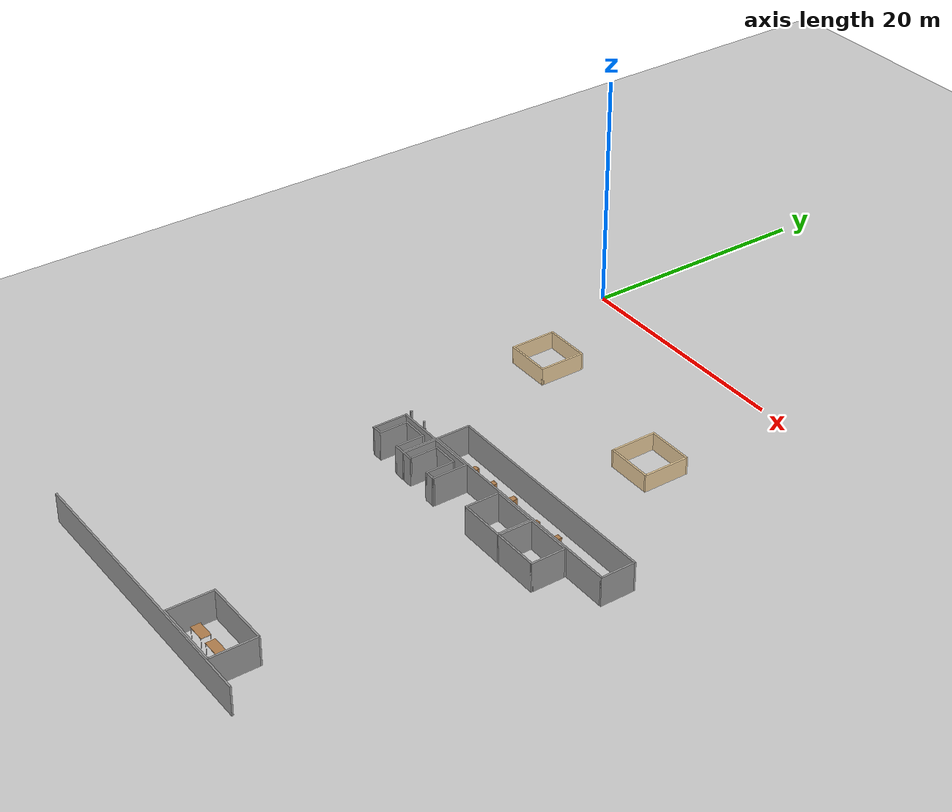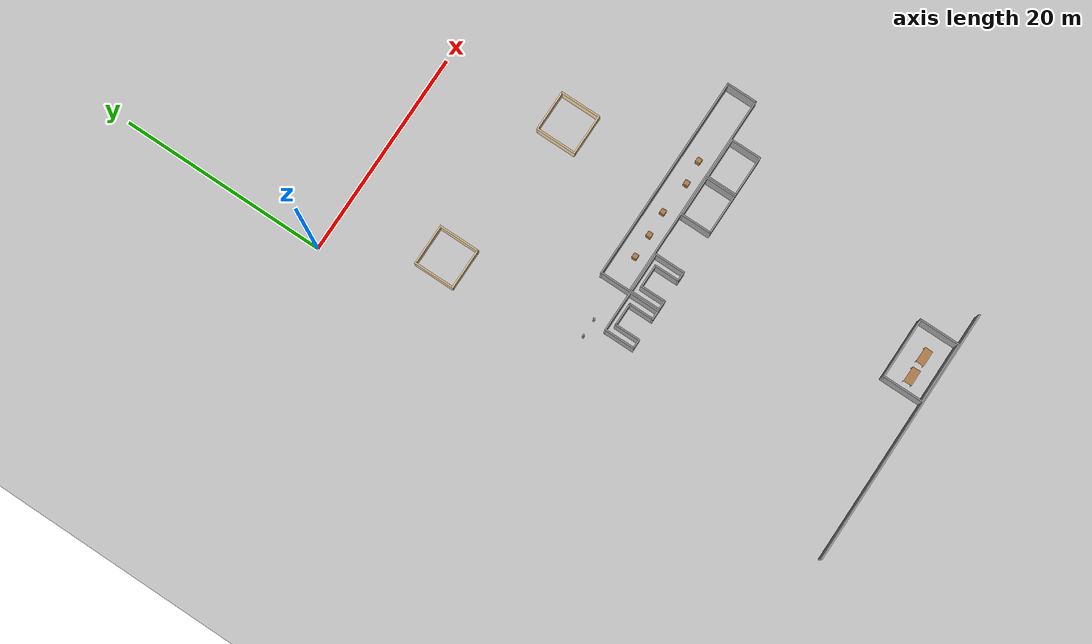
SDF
<sdf version="1.6">
 <world name="default">
  <model name="ground_plane">
   <static>1</static>
   <link name="link">
    <collision name="collision">
     <geometry><plane><normal>0 0 1</normal><size>105 105</size></plane></geometry>
     <surface>
      <contact><collide_bitmask>65535</collide_bitmask></contact>
      <friction><ode><mu>100</mu><mu2>50</mu2></ode></friction>
     </surface>
    </collision>
    <visual name="visual">
     <cast_shadows>0</cast_shadows>
     <geometry><plane><normal>0 0 1</normal><size>105 105</size></plane></geometry>
     <material>
      <script><uri>file://media/materials/scripts/gazebo.material</uri><name>Gazebo/Grey</name></script>
     </material>
    </visual>
   </link>
  </model>
  <model name="base3x20_3">
   <pose>21.5045 -23.229 0 0 -0 0</pose>
   <link name="Wall_16">
    <collision name="Wall_16_Collision">
     <geometry><box><size>3 0.15 2.5</size></box></geometry>
     <pose>0 0 1.25 0 -0 0</pose>
    </collision>
    <visual name="Wall_16_Visual">
     <pose>0 0 1.25 0 -0 0</pose>
     <geometry><box><size>3 0.15 2.5</size></box></geometry>
     <material>
      <script><uri>file://media/materials/scripts/gazebo.material</uri><name>Gazebo/Grey</name></script>
      <ambient>1 1 1 1</ambient>
     </material>
     <meta><layer>0</layer></meta>
    </visual>
    <pose>-9.925 -0 0 0 -0 -1.5708</pose>
   </link>
   <link name="Wall_17">
    <collision name="Wall_17_Collision">
     <geometry><box><size>20 0.15 2.5</size></box></geometry>
     <pose>0 0 1.25 0 -0 0</pose>
    </collision>
    <visual name="Wall_17_Visual">
     <pose>0 0 1.25 0 -0 0</pose>
     <geometry><box><size>20 0.15 2.5</size></box></geometry>
     <material>
      <script><uri>file://media/materials/scripts/gazebo.material</uri><name>Gazebo/Grey</name></script>
      <ambient>1 1 1 1</ambient>
     </material>
     <meta><layer>0</layer></meta>
    </visual>
    <pose>-0 -1.425 0 0 -0 0</pose>
   </link>
   <link name="Wall_18">
    <collision name="Wall_18_Collision">
     <geometry><box><size>3 0.15 2.5</size></box></geometry>
     <pose>0 0 1.25 0 -0 0</pose>
    </collision>
    <visual name="Wall_18_Visual">
     <pose>0 0 1.25 0 -0 0</pose>
     <geometry><box><size>3 0.15 2.5</size></box></geometry>
     <material>
      <script><uri>file://media/materials/scripts/gazebo.material</uri><name>Gazebo/Grey</name></script>
      <ambient>1 1 1 1</ambient>
     </material>
     <meta><layer>0</layer></meta>
    </visual>
    <pose>9.925 -0 0 0 -0 1.5708</pose>
   </link>
   <link name="Wall_19">
    <collision name="Wall_19_Collision">
     <geometry><box><size>20 0.15 2.5</size></box></geometry>
     <pose>0 0 1.25 0 -0 0</pose>
    </collision>
    <visual name="Wall_19_Visual">
     <pose>0 0 1.25 0 -0 0</pose>
     <geometry><box><size>20 0.15 2.5</size></box></geometry>
     <material>
      <script><uri>file://media/materials/scripts/gazebo.material</uri><name>Gazebo/Grey</name></script>
      <ambient>1 1 1 1</ambient>
     </material>
     <meta><layer>0</layer></meta>
    </visual>
    <pose>-0 1.425 0 0 -0 3.14159</pose>
   </link>
   <static>1</static>
  </model>
  <model name="base4x6_0">
   <pose>20.4097 -48.6671 0 0 -0 0</pose>
   <link name="Wall_23">
    <collision name="Wall_23_Collision">
     <geometry><box><size>4 0.15 2.5</size></box></geometry>
     <pose>0 0 1.25 0 -0 0</pose>
    </collision>
    <visual name="Wall_23_Visual">
     <pose>0 0 1.25 0 -0 0</pose>
     <geometry><box><size>4 0.15 2.5</size></box></geometry>
     <material>
      <script><uri>file://media/materials/scripts/gazebo.material</uri><name>Gazebo/Grey</name></script>
      <ambient>1 1 1 1</ambient>
     </material>
     <meta><layer>0</layer></meta>
    </visual>
    <pose>-2.925 0 0 0 -0 -1.5708</pose>
   </link>
   <link name="Wall_24">
    <collision name="Wall_24_Collision">
     <geometry><box><size>6 0.15 2.5</size></box></geometry>
     <pose>0 0 1.25 0 -0 0</pose>
    </collision>
    <visual name="Wall_24_Visual">
     <pose>0 0 1.25 0 -0 0</pose>
     <geometry><box><size>6 0.15 2.5</size></box></geometry>
     <material>
      <script><uri>file://media/materials/scripts/gazebo.material</uri><name>Gazebo/Grey</name></script>
      <ambient>1 1 1 1</ambient>
     </material>
     <meta><layer>0</layer></meta>
    </visual>
    <pose>-0 -1.925 0 0 -0 0</pose>
   </link>
   <link name="Wall_25">
    <collision name="Wall_25_Collision">
     <geometry><box><size>4 0.15 2.5</size></box></geometry>
     <pose>0 0 1.25 0 -0 0</pose>
    </collision>
    <visual name="Wall_25_Visual">
     <pose>0 0 1.25 0 -0 0</pose>
     <geometry><box><size>4 0.15 2.5</size></box></geometry>
     <material>
      <script><uri>file://media/materials/scripts/gazebo.material</uri><name>Gazebo/Grey</name></script>
      <ambient>1 1 1 1</ambient>
     </material>
     <meta><layer>0</layer></meta>
    </visual>
    <pose>2.925 0 0 0 -0 1.5708</pose>
   </link>
   <link name="Wall_26">
    <collision name="Wall_26_Collision">
     <geometry><box><size>6 0.15 2.5</size></box></geometry>
     <pose>0 0 1.25 0 -0 0</pose>
    </collision>
    <visual name="Wall_26_Visual">
     <pose>0 0 1.25 0 -0 0</pose>
     <geometry><box><size>6 0.15 2.5</size></box></geometry>
     <material>
      <script><uri>file://media/materials/scripts/gazebo.material</uri><name>Gazebo/Grey</name></script>
      <ambient>1 1 1 1</ambient>
     </material>
     <meta><layer>0</layer></meta>
    </visual>
    <pose>-0 1.925 0 0 -0 3.14159</pose>
   </link>
   <static>1</static>
  </model>
  <model name="wall_25m_8">
   <pose>14.0268 -50.7126 0 0 -0 0</pose>
   <link name="Wall_28">
    <collision name="Wall_28_Collision">
     <geometry><box><size>25 0.15 2.5</size></box></geometry>
     <pose>0 0 1.25 0 -0 0</pose>
    </collision>
    <visual name="Wall_28_Visual">
     <pose>0 0 1.25 0 -0 0</pose>
     <geometry><box><size>25 0.15 2.5</size></box></geometry>
     <material>
      <script><uri>file://media/materials/scripts/gazebo.material</uri><name>Gazebo/Grey</name></script>
      <ambient>1 1 1 1</ambient>
     </material>
     <meta><layer>0</layer></meta>
    </visual>
   </link>
   <static>1</static>
  </model>
  <model name="table_12">
   <static>1</static>
   <link name="link">
    <collision name="surface">
     <pose>0 0 1 0 -0 0</pose>
     <geometry><box><size>1.5 0.8 0.03</size></box></geometry>
     <surface><friction><ode><mu>0.6</mu><mu2>0.6</mu2></ode></friction></surface>
    </collision>
    <visual name="visual1">
     <pose>0 0 1 0 -0 0</pose>
     <geometry><box><size>1.5 0.8 0.03</size></box></geometry>
     <material>
      <script><uri>file://media/materials/scripts/gazebo.material</uri><name>Gazebo/Wood</name></script>
     </material>
    </visual>
    <collision name="front_left_leg">
     <pose>0.68 0.38 0.5 0 -0 0</pose>
     <geometry><cylinder><radius>0.02</radius><length>1</length></cylinder></geometry>
    </collision>
    <visual name="front_left_leg">
     <pose>0.68 0.38 0.5 0 -0 0</pose>
     <geometry><cylinder><radius>0.02</radius><length>1</length></cylinder></geometry>
     <material>
      <script><uri>file://media/materials/scripts/gazebo.material</uri><name>Gazebo/Grey</name></script>
     </material>
    </visual>
    <collision name="front_right_leg">
     <pose>0.68 -0.38 0.5 0 -0 0</pose>
     <geometry><cylinder><radius>0.02</radius><length>1</length></cylinder></geometry>
    </collision>
    <visual name="front_right_leg">
     <pose>0.68 -0.38 0.5 0 -0 0</pose>
     <geometry><cylinder><radius>0.02</radius><length>1</length></cylinder></geometry>
     <material>
      <script><uri>file://media/materials/scripts/gazebo.material</uri><name>Gazebo/Grey</name></script>
     </material>
    </visual>
    <collision name="back_right_leg">
     <pose>-0.68 -0.38 0.5 0 -0 0</pose>
     <geometry><cylinder><radius>0.02</radius><length>1</length></cylinder></geometry>
    </collision>
    <visual name="back_right_leg">
     <pose>-0.68 -0.38 0.5 0 -0 0</pose>
     <geometry><cylinder><radius>0.02</radius><length>1</length></cylinder></geometry>
     <material>
      <script><uri>file://media/materials/scripts/gazebo.material</uri><name>Gazebo/Grey</name></script>
     </material>
    </visual>
    <collision name="back_left_leg">
     <pose>-0.68 0.38 0.5 0 -0 0</pose>
     <geometry><cylinder><radius>0.02</radius><length>1</length></cylinder></geometry>
    </collision>
    <visual name="back_left_leg">
     <pose>-0.68 0.38 0.5 0 -0 0</pose>
     <geometry><cylinder><radius>0.02</radius><length>1</length></cylinder></geometry>
     <material>
      <script><uri>file://media/materials/scripts/gazebo.material</uri><name>Gazebo/Grey</name></script>
     </material>
    </visual>
   </link>
   <pose>19.0783 -48.8312 0 0 -0 0</pose>
  </model>
  <model name="table_13">
   <static>1</static>
   <link name="link">
    <collision name="surface">
     <pose>0 0 1 0 -0 0</pose>
     <geometry><box><size>1.5 0.8 0.03</size></box></geometry>
     <surface><friction><ode><mu>0.6</mu><mu2>0.6</mu2></ode></friction></surface>
    </collision>
    <visual name="visual1">
     <pose>0 0 1 0 -0 0</pose>
     <geometry><box><size>1.5 0.8 0.03</size></box></geometry>
     <material>
      <script><uri>file://media/materials/scripts/gazebo.material</uri><name>Gazebo/Wood</name></script>
     </material>
    </visual>
    <collision name="front_left_leg">
     <pose>0.68 0.38 0.5 0 -0 0</pose>
     <geometry><cylinder><radius>0.02</radius><length>1</length></cylinder></geometry>
    </collision>
    <visual name="front_left_leg">
     <pose>0.68 0.38 0.5 0 -0 0</pose>
     <geometry><cylinder><radius>0.02</radius><length>1</length></cylinder></geometry>
     <material>
      <script><uri>file://media/materials/scripts/gazebo.material</uri><name>Gazebo/Grey</name></script>
     </material>
    </visual>
    <collision name="front_right_leg">
     <pose>0.68 -0.38 0.5 0 -0 0</pose>
     <geometry><cylinder><radius>0.02</radius><length>1</length></cylinder></geometry>
    </collision>
    <visual name="front_right_leg">
     <pose>0.68 -0.38 0.5 0 -0 0</pose>
     <geometry><cylinder><radius>0.02</radius><length>1</length></cylinder></geometry>
     <material>
      <script><uri>file://media/materials/scripts/gazebo.material</uri><name>Gazebo/Grey</name></script>
     </material>
    </visual>
    <collision name="back_right_leg">
     <pose>-0.68 -0.38 0.5 0 -0 0</pose>
     <geometry><cylinder><radius>0.02</radius><length>1</length></cylinder></geometry>
    </collision>
    <visual name="back_right_leg">
     <pose>-0.68 -0.38 0.5 0 -0 0</pose>
     <geometry><cylinder><radius>0.02</radius><length>1</length></cylinder></geometry>
     <material>
      <script><uri>file://media/materials/scripts/gazebo.material</uri><name>Gazebo/Grey</name></script>
     </material>
    </visual>
    <collision name="back_left_leg">
     <pose>-0.68 0.38 0.5 0 -0 0</pose>
     <geometry><cylinder><radius>0.02</radius><length>1</length></cylinder></geometry>
    </collision>
    <visual name="back_left_leg">
     <pose>-0.68 0.38 0.5 0 -0 0</pose>
     <geometry><cylinder><radius>0.02</radius><length>1</length></cylinder></geometry>
     <material>
      <script><uri>file://media/materials/scripts/gazebo.material</uri><name>Gazebo/Grey</name></script>
     </material>
    </visual>
   </link>
   <pose>21.0761 -48.8079 0 0 -0 0</pose>
  </model>
  <model name="cabinet">
   <static>1</static>
   <link name="cabinet_bottom_plate">
    <inertial>
     <pose>0 0 -1 0 -0 0</pose>
     <inertia><ixx>2.05</ixx><ixy>0</ixy><ixz>0</ixz><iyy>2.05</iyy><iyz>0</iyz><izz>2.05</izz></inertia>
     <mass>25</mass>
    </inertial>
    <collision name="cabinet_bottom_plate_geom">
     <pose>0 0 0.01 0 -0 0</pose>
     <geometry><box><size>0.45 0.45 0.02</size></box></geometry>
    </collision>
    <visual name="cabinet_bottom_plate_geom_visual">
     <pose>0 0 0.01 0 -0 0</pose>
     <geometry><box><size>0.45 0.45 0.02</size></box></geometry>
     <material>
      <script><uri>file://media/materials/scripts/gazebo.material</uri><name>Gazebo/Wood</name></script>
     </material>
    </visual>
    <collision name="cabinet_bottom_plate_geom_cabinet_back_plate">
     <pose>0.235 0 0.51 0 -0 0</pose>
     <geometry><box><size>0.02 0.45 1.02</size></box></geometry>
    </collision>
    <visual name="cabinet_bottom_plate_geom_cabinet_back_plate_visual">
     <pose>0.235 0 0.51 0 -0 0</pose>
     <geometry><box><size>0.02 0.45 1.02</size></box></geometry>
     <material>
      <script><uri>file://media/materials/scripts/gazebo.material</uri><name>Gazebo/Wood</name></script>
     </material>
    </visual>
    <collision name="cabinet_bottom_plate_geom_cabinet_left_plate">
     <pose>0 0.235 0.51 0 -0 0</pose>
     <geometry><box><size>0.45 0.02 1.02</size></box></geometry>
    </collision>
    <visual name="cabinet_bottom_plate_geom_cabinet_left_plate_visual">
     <pose>0 0.235 0.51 0 -0 0</pose>
     <geometry><box><size>0.45 0.02 1.02</size></box></geometry>
     <material>
      <script><uri>file://media/materials/scripts/gazebo.material</uri><name>Gazebo/Wood</name></script>
     </material>
    </visual>
    <collision name="cabinet_bottom_plate_geom_cabinet_middle_plate">
     <pose>0 0 0.51 0 -0 0</pose>
     <geometry><box><size>0.45 0.45 0.02</size></box></geometry>
    </collision>
    <visual name="cabinet_bottom_plate_geom_cabinet_middle_plate_visual">
     <pose>0 0 0.51 0 -0 0</pose>
     <geometry><box><size>0.45 0.45 0.02</size></box></geometry>
     <material>
      <script><uri>file://media/materials/scripts/gazebo.material</uri><name>Gazebo/Wood</name></script>
     </material>
    </visual>
    <collision name="cabinet_bottom_plate_geom_cabinet_right_plate">
     <pose>0 -0.235 0.51 0 -0 0</pose>
     <geometry><box><size>0.45 0.02 1.02</size></box></geometry>
    </collision>
    <visual name="cabinet_bottom_plate_geom_cabinet_right_plate_visual">
     <pose>0 -0.235 0.51 0 -0 0</pose>
     <geometry><box><size>0.45 0.02 1.02</size></box></geometry>
     <material>
      <script><uri>file://media/materials/scripts/gazebo.material</uri><name>Gazebo/Wood</name></script>
     </material>
    </visual>
    <collision name="cabinet_bottom_plate_geom_cabinet_top_plate">
     <pose>0 0 1.01 0 -0 0</pose>
     <geometry><box><size>0.45 0.45 0.02</size></box></geometry>
    </collision>
    <visual name="cabinet_bottom_plate_geom_cabinet_top_plate_visual">
     <pose>0 0 1.01 0 -0 0</pose>
     <geometry><box><size>0.45 0.45 0.02</size></box></geometry>
     <material>
      <script><uri>file://media/materials/scripts/gazebo.material</uri><name>Gazebo/Wood</name></script>
     </material>
    </visual>
   </link>
   <pose>14.6067 -23.3531 0 0 -0 0</pose>
  </model>
  <model name="cabinet_0">
   <static>1</static>
   <link name="cabinet_bottom_plate">
    <inertial>
     <pose>0 0 -1 0 -0 0</pose>
     <inertia><ixx>2.05</ixx><ixy>0</ixy><ixz>0</ixz><iyy>2.05</iyy><iyz>0</iyz><izz>2.05</izz></inertia>
     <mass>25</mass>
    </inertial>
    <collision name="cabinet_bottom_plate_geom">
     <pose>0 0 0.01 0 -0 0</pose>
     <geometry><box><size>0.45 0.45 0.02</size></box></geometry>
    </collision>
    <visual name="cabinet_bottom_plate_geom_visual">
     <pose>0 0 0.01 0 -0 0</pose>
     <geometry><box><size>0.45 0.45 0.02</size></box></geometry>
     <material>
      <script><uri>file://media/materials/scripts/gazebo.material</uri><name>Gazebo/Wood</name></script>
     </material>
    </visual>
    <collision name="cabinet_bottom_plate_geom_cabinet_back_plate">
     <pose>0.235 0 0.51 0 -0 0</pose>
     <geometry><box><size>0.02 0.45 1.02</size></box></geometry>
    </collision>
    <visual name="cabinet_bottom_plate_geom_cabinet_back_plate_visual">
     <pose>0.235 0 0.51 0 -0 0</pose>
     <geometry><box><size>0.02 0.45 1.02</size></box></geometry>
     <material>
      <script><uri>file://media/materials/scripts/gazebo.material</uri><name>Gazebo/Wood</name></script>
     </material>
    </visual>
    <collision name="cabinet_bottom_plate_geom_cabinet_left_plate">
     <pose>0 0.235 0.51 0 -0 0</pose>
     <geometry><box><size>0.45 0.02 1.02</size></box></geometry>
    </collision>
    <visual name="cabinet_bottom_plate_geom_cabinet_left_plate_visual">
     <pose>0 0.235 0.51 0 -0 0</pose>
     <geometry><box><size>0.45 0.02 1.02</size></box></geometry>
     <material>
      <script><uri>file://media/materials/scripts/gazebo.material</uri><name>Gazebo/Wood</name></script>
     </material>
    </visual>
    <collision name="cabinet_bottom_plate_geom_cabinet_middle_plate">
     <pose>0 0 0.51 0 -0 0</pose>
     <geometry><box><size>0.45 0.45 0.02</size></box></geometry>
    </collision>
    <visual name="cabinet_bottom_plate_geom_cabinet_middle_plate_visual">
     <pose>0 0 0.51 0 -0 0</pose>
     <geometry><box><size>0.45 0.45 0.02</size></box></geometry>
     <material>
      <script><uri>file://media/materials/scripts/gazebo.material</uri><name>Gazebo/Wood</name></script>
     </material>
    </visual>
    <collision name="cabinet_bottom_plate_geom_cabinet_right_plate">
     <pose>0 -0.235 0.51 0 -0 0</pose>
     <geometry><box><size>0.45 0.02 1.02</size></box></geometry>
    </collision>
    <visual name="cabinet_bottom_plate_geom_cabinet_right_plate_visual">
     <pose>0 -0.235 0.51 0 -0 0</pose>
     <geometry><box><size>0.45 0.02 1.02</size></box></geometry>
     <material>
      <script><uri>file://media/materials/scripts/gazebo.material</uri><name>Gazebo/Wood</name></script>
     </material>
    </visual>
    <collision name="cabinet_bottom_plate_geom_cabinet_top_plate">
     <pose>0 0 1.01 0 -0 0</pose>
     <geometry><box><size>0.45 0.45 0.02</size></box></geometry>
    </collision>
    <visual name="cabinet_bottom_plate_geom_cabinet_top_plate_visual">
     <pose>0 0 1.01 0 -0 0</pose>
     <geometry><box><size>0.45 0.45 0.02</size></box></geometry>
     <material>
      <script><uri>file://media/materials/scripts/gazebo.material</uri><name>Gazebo/Wood</name></script>
     </material>
    </visual>
   </link>
   <pose>16.8557 -23.3254 0 0 -0 0</pose>
  </model>
  <model name="cabinet_1">
   <static>1</static>
   <link name="cabinet_bottom_plate">
    <inertial>
     <pose>0 0 -1 0 -0 0</pose>
     <inertia><ixx>2.05</ixx><ixy>0</ixy><ixz>0</ixz><iyy>2.05</iyy><iyz>0</iyz><izz>2.05</izz></inertia>
     <mass>25</mass>
    </inertial>
    <collision name="cabinet_bottom_plate_geom">
     <pose>0 0 0.01 0 -0 0</pose>
     <geometry><box><size>0.45 0.45 0.02</size></box></geometry>
    </collision>
    <visual name="cabinet_bottom_plate_geom_visual">
     <pose>0 0 0.01 0 -0 0</pose>
     <geometry><box><size>0.45 0.45 0.02</size></box></geometry>
     <material>
      <script><uri>file://media/materials/scripts/gazebo.material</uri><name>Gazebo/Wood</name></script>
     </material>
    </visual>
    <collision name="cabinet_bottom_plate_geom_cabinet_back_plate">
     <pose>0.235 0 0.51 0 -0 0</pose>
     <geometry><box><size>0.02 0.45 1.02</size></box></geometry>
    </collision>
    <visual name="cabinet_bottom_plate_geom_cabinet_back_plate_visual">
     <pose>0.235 0 0.51 0 -0 0</pose>
     <geometry><box><size>0.02 0.45 1.02</size></box></geometry>
     <material>
      <script><uri>file://media/materials/scripts/gazebo.material</uri><name>Gazebo/Wood</name></script>
     </material>
    </visual>
    <collision name="cabinet_bottom_plate_geom_cabinet_left_plate">
     <pose>0 0.235 0.51 0 -0 0</pose>
     <geometry><box><size>0.45 0.02 1.02</size></box></geometry>
    </collision>
    <visual name="cabinet_bottom_plate_geom_cabinet_left_plate_visual">
     <pose>0 0.235 0.51 0 -0 0</pose>
     <geometry><box><size>0.45 0.02 1.02</size></box></geometry>
     <material>
      <script><uri>file://media/materials/scripts/gazebo.material</uri><name>Gazebo/Wood</name></script>
     </material>
    </visual>
    <collision name="cabinet_bottom_plate_geom_cabinet_middle_plate">
     <pose>0 0 0.51 0 -0 0</pose>
     <geometry><box><size>0.45 0.45 0.02</size></box></geometry>
    </collision>
    <visual name="cabinet_bottom_plate_geom_cabinet_middle_plate_visual">
     <pose>0 0 0.51 0 -0 0</pose>
     <geometry><box><size>0.45 0.45 0.02</size></box></geometry>
     <material>
      <script><uri>file://media/materials/scripts/gazebo.material</uri><name>Gazebo/Wood</name></script>
     </material>
    </visual>
    <collision name="cabinet_bottom_plate_geom_cabinet_right_plate">
     <pose>0 -0.235 0.51 0 -0 0</pose>
     <geometry><box><size>0.45 0.02 1.02</size></box></geometry>
    </collision>
    <visual name="cabinet_bottom_plate_geom_cabinet_right_plate_visual">
     <pose>0 -0.235 0.51 0 -0 0</pose>
     <geometry><box><size>0.45 0.02 1.02</size></box></geometry>
     <material>
      <script><uri>file://media/materials/scripts/gazebo.material</uri><name>Gazebo/Wood</name></script>
     </material>
    </visual>
    <collision name="cabinet_bottom_plate_geom_cabinet_top_plate">
     <pose>0 0 1.01 0 -0 0</pose>
     <geometry><box><size>0.45 0.45 0.02</size></box></geometry>
    </collision>
    <visual name="cabinet_bottom_plate_geom_cabinet_top_plate_visual">
     <pose>0 0 1.01 0 -0 0</pose>
     <geometry><box><size>0.45 0.45 0.02</size></box></geometry>
     <material>
      <script><uri>file://media/materials/scripts/gazebo.material</uri><name>Gazebo/Wood</name></script>
     </material>
    </visual>
   </link>
   <pose>19.1939 -23.2091 0 0 -0 0</pose>
  </model>
  <model name="cabinet_2">
   <static>1</static>
   <link name="cabinet_bottom_plate">
    <inertial>
     <pose>0 0 -1 0 -0 0</pose>
     <inertia><ixx>2.05</ixx><ixy>0</ixy><ixz>0</ixz><iyy>2.05</iyy><iyz>0</iyz><izz>2.05</izz></inertia>
     <mass>25</mass>
    </inertial>
    <collision name="cabinet_bottom_plate_geom">
     <pose>0 0 0.01 0 -0 0</pose>
     <geometry><box><size>0.45 0.45 0.02</size></box></geometry>
    </collision>
    <visual name="cabinet_bottom_plate_geom_visual">
     <pose>0 0 0.01 0 -0 0</pose>
     <geometry><box><size>0.45 0.45 0.02</size></box></geometry>
     <material>
      <script><uri>file://media/materials/scripts/gazebo.material</uri><name>Gazebo/Wood</name></script>
     </material>
    </visual>
    <collision name="cabinet_bottom_plate_geom_cabinet_back_plate">
     <pose>0.235 0 0.51 0 -0 0</pose>
     <geometry><box><size>0.02 0.45 1.02</size></box></geometry>
    </collision>
    <visual name="cabinet_bottom_plate_geom_cabinet_back_plate_visual">
     <pose>0.235 0 0.51 0 -0 0</pose>
     <geometry><box><size>0.02 0.45 1.02</size></box></geometry>
     <material>
      <script><uri>file://media/materials/scripts/gazebo.material</uri><name>Gazebo/Wood</name></script>
     </material>
    </visual>
    <collision name="cabinet_bottom_plate_geom_cabinet_left_plate">
     <pose>0 0.235 0.51 0 -0 0</pose>
     <geometry><box><size>0.45 0.02 1.02</size></box></geometry>
    </collision>
    <visual name="cabinet_bottom_plate_geom_cabinet_left_plate_visual">
     <pose>0 0.235 0.51 0 -0 0</pose>
     <geometry><box><size>0.45 0.02 1.02</size></box></geometry>
     <material>
      <script><uri>file://media/materials/scripts/gazebo.material</uri><name>Gazebo/Wood</name></script>
     </material>
    </visual>
    <collision name="cabinet_bottom_plate_geom_cabinet_middle_plate">
     <pose>0 0 0.51 0 -0 0</pose>
     <geometry><box><size>0.45 0.45 0.02</size></box></geometry>
    </collision>
    <visual name="cabinet_bottom_plate_geom_cabinet_middle_plate_visual">
     <pose>0 0 0.51 0 -0 0</pose>
     <geometry><box><size>0.45 0.45 0.02</size></box></geometry>
     <material>
      <script><uri>file://media/materials/scripts/gazebo.material</uri><name>Gazebo/Wood</name></script>
     </material>
    </visual>
    <collision name="cabinet_bottom_plate_geom_cabinet_right_plate">
     <pose>0 -0.235 0.51 0 -0 0</pose>
     <geometry><box><size>0.45 0.02 1.02</size></box></geometry>
    </collision>
    <visual name="cabinet_bottom_plate_geom_cabinet_right_plate_visual">
     <pose>0 -0.235 0.51 0 -0 0</pose>
     <geometry><box><size>0.45 0.02 1.02</size></box></geometry>
     <material>
      <script><uri>file://media/materials/scripts/gazebo.material</uri><name>Gazebo/Wood</name></script>
     </material>
    </visual>
    <collision name="cabinet_bottom_plate_geom_cabinet_top_plate">
     <pose>0 0 1.01 0 -0 0</pose>
     <geometry><box><size>0.45 0.45 0.02</size></box></geometry>
    </collision>
    <visual name="cabinet_bottom_plate_geom_cabinet_top_plate_visual">
     <pose>0 0 1.01 0 -0 0</pose>
     <geometry><box><size>0.45 0.45 0.02</size></box></geometry>
     <material>
      <script><uri>file://media/materials/scripts/gazebo.material</uri><name>Gazebo/Wood</name></script>
     </material>
    </visual>
   </link>
   <pose>22.437 -23.5316 0 0 -0 0</pose>
  </model>
  <model name="cabinet_3">
   <static>1</static>
   <link name="cabinet_bottom_plate">
    <inertial>
     <pose>0 0 -1 0 -0 0</pose>
     <inertia><ixx>2.05</ixx><ixy>0</ixy><ixz>0</ixz><iyy>2.05</iyy><iyz>0</iyz><izz>2.05</izz></inertia>
     <mass>25</mass>
    </inertial>
    <collision name="cabinet_bottom_plate_geom">
     <pose>0 0 0.01 0 -0 0</pose>
     <geometry><box><size>0.45 0.45 0.02</size></box></geometry>
    </collision>
    <visual name="cabinet_bottom_plate_geom_visual">
     <pose>0 0 0.01 0 -0 0</pose>
     <geometry><box><size>0.45 0.45 0.02</size></box></geometry>
     <material>
      <script><uri>file://media/materials/scripts/gazebo.material</uri><name>Gazebo/Wood</name></script>
     </material>
    </visual>
    <collision name="cabinet_bottom_plate_geom_cabinet_back_plate">
     <pose>0.235 0 0.51 0 -0 0</pose>
     <geometry><box><size>0.02 0.45 1.02</size></box></geometry>
    </collision>
    <visual name="cabinet_bottom_plate_geom_cabinet_back_plate_visual">
     <pose>0.235 0 0.51 0 -0 0</pose>
     <geometry><box><size>0.02 0.45 1.02</size></box></geometry>
     <material>
      <script><uri>file://media/materials/scripts/gazebo.material</uri><name>Gazebo/Wood</name></script>
     </material>
    </visual>
    <collision name="cabinet_bottom_plate_geom_cabinet_left_plate">
     <pose>0 0.235 0.51 0 -0 0</pose>
     <geometry><box><size>0.45 0.02 1.02</size></box></geometry>
    </collision>
    <visual name="cabinet_bottom_plate_geom_cabinet_left_plate_visual">
     <pose>0 0.235 0.51 0 -0 0</pose>
     <geometry><box><size>0.45 0.02 1.02</size></box></geometry>
     <material>
      <script><uri>file://media/materials/scripts/gazebo.material</uri><name>Gazebo/Wood</name></script>
     </material>
    </visual>
    <collision name="cabinet_bottom_plate_geom_cabinet_middle_plate">
     <pose>0 0 0.51 0 -0 0</pose>
     <geometry><box><size>0.45 0.45 0.02</size></box></geometry>
    </collision>
    <visual name="cabinet_bottom_plate_geom_cabinet_middle_plate_visual">
     <pose>0 0 0.51 0 -0 0</pose>
     <geometry><box><size>0.45 0.45 0.02</size></box></geometry>
     <material>
      <script><uri>file://media/materials/scripts/gazebo.material</uri><name>Gazebo/Wood</name></script>
     </material>
    </visual>
    <collision name="cabinet_bottom_plate_geom_cabinet_right_plate">
     <pose>0 -0.235 0.51 0 -0 0</pose>
     <geometry><box><size>0.45 0.02 1.02</size></box></geometry>
    </collision>
    <visual name="cabinet_bottom_plate_geom_cabinet_right_plate_visual">
     <pose>0 -0.235 0.51 0 -0 0</pose>
     <geometry><box><size>0.45 0.02 1.02</size></box></geometry>
     <material>
      <script><uri>file://media/materials/scripts/gazebo.material</uri><name>Gazebo/Wood</name></script>
     </material>
    </visual>
    <collision name="cabinet_bottom_plate_geom_cabinet_top_plate">
     <pose>0 0 1.01 0 -0 0</pose>
     <geometry><box><size>0.45 0.45 0.02</size></box></geometry>
    </collision>
    <visual name="cabinet_bottom_plate_geom_cabinet_top_plate_visual">
     <pose>0 0 1.01 0 -0 0</pose>
     <geometry><box><size>0.45 0.45 0.02</size></box></geometry>
     <material>
      <script><uri>file://media/materials/scripts/gazebo.material</uri><name>Gazebo/Wood</name></script>
     </material>
    </visual>
   </link>
   <pose>24.6818 -23.3224 0 0 -0 0</pose>
  </model>
  <model name="unit_cylinder_r0.1_l2m">
   <link name="link">
    <inertial>
     <mass>1</mass>
     <inertia><ixx>0.145833</ixx><ixy>0</ixy><ixz>0</ixz><iyy>0.145833</iyy><iyz>0</iyz><izz>0.125</izz></inertia>
    </inertial>
    <visual name="visual">
     <geometry><cylinder><radius>0.1</radius><length>2</length></cylinder></geometry>
     <material>
      <script><name>Gazebo/Grey</name><uri>file://media/materials/scripts/gazebo.material</uri></script>
      <shader type="vertex"><normal_map>__default__</normal_map></shader>
      <ambient>0.3 0.3 0.3 1</ambient>
      <diffuse>0.7 0.7 0.7 1</diffuse>
      <specular>0.01 0.01 0.01 1</specular>
      <emissive>0 0 0 1</emissive>
     </material>
    </visual>
    <collision name="collision">
     <geometry><cylinder><radius>0.5</radius><length>1</length></cylinder></geometry>
     <surface>
      <friction>
       <ode><mu>1</mu><mu2>1</mu2><fdir1>0 0 0</fdir1><slip1>0</slip1><slip2>0</slip2></ode>
       <torsional>
        <coefficient>1</coefficient>
        <patch_radius>0</patch_radius>
        <surface_radius>0</surface_radius>
        <use_patch_radius>1</use_patch_radius>
        <ode><slip>0</slip></ode>
       </torsional>
      </friction>
      <bounce><restitution_coefficient>0</restitution_coefficient><threshold>1e+06</threshold></bounce>
      <contact>
       <collide_without_contact>0</collide_without_contact>
       <collide_without_contact_bitmask>1</collide_without_contact_bitmask>
       <collide_bitmask>1</collide_bitmask>
       <ode>
        <soft_cfm>0</soft_cfm>
        <soft_erp>0.2</soft_erp>
        <kp>1e+13</kp>
        <kd>1</kd>
        <max_vel>0.01</max_vel>
        <min_depth>0</min_depth>
       </ode>
       <bullet>
        <split_impulse>1</split_impulse>
        <split_impulse_penetration_threshold>-0.01</split_impulse_penetration_threshold>
        <soft_cfm>0</soft_cfm>
        <soft_erp>0.2</soft_erp>
        <kp>1e+13</kp>
        <kd>1</kd>
       </bullet>
      </contact>
     </surface>
    </collision>
   </link>
   <static>0</static>
   <pose>6.32754 -23.4492 0.499981 0 -0 0</pose>
  </model>
  <model name="unit_cylinder_r0.1_l2m_0">
   <link name="link">
    <inertial>
     <mass>1</mass>
     <inertia><ixx>0.145833</ixx><ixy>0</ixy><ixz>0</ixz><iyy>0.145833</iyy><iyz>0</iyz><izz>0.125</izz></inertia>
    </inertial>
    <visual name="visual">
     <geometry><cylinder><radius>0.1</radius><length>2</length></cylinder></geometry>
     <material>
      <script><name>Gazebo/Grey</name><uri>file://media/materials/scripts/gazebo.material</uri></script>
      <shader type="vertex"><normal_map>__default__</normal_map></shader>
      <ambient>0.3 0.3 0.3 1</ambient>
      <diffuse>0.7 0.7 0.7 1</diffuse>
      <specular>0.01 0.01 0.01 1</specular>
      <emissive>0 0 0 1</emissive>
     </material>
    </visual>
    <collision name="collision">
     <geometry><cylinder><radius>0.5</radius><length>1</length></cylinder></geometry>
     <surface>
      <friction>
       <ode><mu>1</mu><mu2>1</mu2><fdir1>0 0 0</fdir1><slip1>0</slip1><slip2>0</slip2></ode>
       <torsional>
        <coefficient>1</coefficient>
        <patch_radius>0</patch_radius>
        <surface_radius>0</surface_radius>
        <use_patch_radius>1</use_patch_radius>
        <ode><slip>0</slip></ode>
       </torsional>
      </friction>
      <bounce><restitution_coefficient>0</restitution_coefficient><threshold>1e+06</threshold></bounce>
      <contact>
       <collide_without_contact>0</collide_without_contact>
       <collide_without_contact_bitmask>1</collide_without_contact_bitmask>
       <collide_bitmask>1</collide_bitmask>
       <ode>
        <soft_cfm>0</soft_cfm>
        <soft_erp>0.2</soft_erp>
        <kp>1e+13</kp>
        <kd>1</kd>
        <max_vel>0.01</max_vel>
        <min_depth>0</min_depth>
       </ode>
       <bullet>
        <split_impulse>1</split_impulse>
        <split_impulse_penetration_threshold>-0.01</split_impulse_penetration_threshold>
        <soft_cfm>0</soft_cfm>
        <soft_erp>0.2</soft_erp>
        <kp>1e+13</kp>
        <kd>1</kd>
       </bullet>
      </contact>
     </surface>
    </collision>
   </link>
   <static>0</static>
   <pose>8.03781 -23.4299 0.499981 0 -0 0</pose>
  </model>
  <model name="box4x4x1.5_1">
   <pose>21.0762 -12.0758 0 0 -0 0</pose>
   <link name="Wall_5">
    <collision name="Wall_5_Collision">
     <geometry><box><size>4 0.15 1.5</size></box></geometry>
     <pose>0 0 0.75 0 -0 0</pose>
    </collision>
    <visual name="Wall_5_Visual">
     <pose>0 0 0.75 0 -0 0</pose>
     <geometry><box><size>4 0.15 1.5</size></box></geometry>
     <material>
      <script><uri>file://media/materials/scripts/gazebo.material</uri><name>Gazebo/Grey</name></script>
      <ambient>0.921569 0.807843 0.615686 1</ambient>
     </material>
     <meta><layer>0</layer></meta>
    </visual>
    <pose>-1.925 -0 0 0 -0 -1.5708</pose>
   </link>
   <link name="Wall_6">
    <collision name="Wall_6_Collision">
     <geometry><box><size>4 0.15 1.5</size></box></geometry>
     <pose>0 0 0.75 0 -0 0</pose>
    </collision>
    <visual name="Wall_6_Visual">
     <pose>0 0 0.75 0 -0 0</pose>
     <geometry><box><size>4 0.15 1.5</size></box></geometry>
     <material>
      <script><uri>file://media/materials/scripts/gazebo.material</uri><name>Gazebo/Grey</name></script>
      <ambient>0.921569 0.807843 0.615686 1</ambient>
     </material>
     <meta><layer>0</layer></meta>
    </visual>
    <pose>0 -1.925 0 0 -0 0</pose>
   </link>
   <link name="Wall_7">
    <collision name="Wall_7_Collision">
     <geometry><box><size>4 0.15 1.5</size></box></geometry>
     <pose>0 0 0.75 0 -0 0</pose>
    </collision>
    <visual name="Wall_7_Visual">
     <pose>0 0 0.75 0 -0 0</pose>
     <geometry><box><size>4 0.15 1.5</size></box></geometry>
     <material>
      <script><uri>file://media/materials/scripts/gazebo.material</uri><name>Gazebo/Grey</name></script>
      <ambient>0.921569 0.807843 0.615686 1</ambient>
     </material>
     <meta><layer>0</layer></meta>
    </visual>
    <pose>1.925 -0 0 0 -0 1.5708</pose>
   </link>
   <link name="Wall_8">
    <collision name="Wall_8_Collision">
     <geometry><box><size>4 0.15 1.5</size></box></geometry>
     <pose>0 0 0.75 0 -0 0</pose>
    </collision>
    <visual name="Wall_8_Visual">
     <pose>0 0 0.75 0 -0 0</pose>
     <geometry><box><size>4 0.15 1.5</size></box></geometry>
     <material>
      <script><uri>file://media/materials/scripts/gazebo.material</uri><name>Gazebo/Grey</name></script>
      <ambient>0.921569 0.807843 0.615686 1</ambient>
     </material>
     <meta><layer>0</layer></meta>
    </visual>
    <pose>0 1.925 0 0 -0 3.14159</pose>
   </link>
   <static>1</static>
  </model>
  <model name="box4x4x1.5_2">
   <pose>5.45303 -9.87303 0 0 -0 0</pose>
   <link name="Wall_5">
    <collision name="Wall_5_Collision">
     <geometry><box><size>4 0.15 1.5</size></box></geometry>
     <pose>0 0 0.75 0 -0 0</pose>
    </collision>
    <visual name="Wall_5_Visual">
     <pose>0 0 0.75 0 -0 0</pose>
     <geometry><box><size>4 0.15 1.5</size></box></geometry>
     <material>
      <script><uri>file://media/materials/scripts/gazebo.material</uri><name>Gazebo/Grey</name></script>
      <ambient>0.921569 0.807843 0.615686 1</ambient>
     </material>
     <meta><layer>0</layer></meta>
    </visual>
    <pose>-1.925 -0 0 0 -0 -1.5708</pose>
   </link>
   <link name="Wall_6">
    <collision name="Wall_6_Collision">
     <geometry><box><size>4 0.15 1.5</size></box></geometry>
     <pose>0 0 0.75 0 -0 0</pose>
    </collision>
    <visual name="Wall_6_Visual">
     <pose>0 0 0.75 0 -0 0</pose>
     <geometry><box><size>4 0.15 1.5</size></box></geometry>
     <material>
      <script><uri>file://media/materials/scripts/gazebo.material</uri><name>Gazebo/Grey</name></script>
      <ambient>0.921569 0.807843 0.615686 1</ambient>
     </material>
     <meta><layer>0</layer></meta>
    </visual>
    <pose>0 -1.925 0 0 -0 0</pose>
   </link>
   <link name="Wall_7">
    <collision name="Wall_7_Collision">
     <geometry><box><size>4 0.15 1.5</size></box></geometry>
     <pose>0 0 0.75 0 -0 0</pose>
    </collision>
    <visual name="Wall_7_Visual">
     <pose>0 0 0.75 0 -0 0</pose>
     <geometry><box><size>4 0.15 1.5</size></box></geometry>
     <material>
      <script><uri>file://media/materials/scripts/gazebo.material</uri><name>Gazebo/Grey</name></script>
      <ambient>0.921569 0.807843 0.615686 1</ambient>
     </material>
     <meta><layer>0</layer></meta>
    </visual>
    <pose>1.925 -0 0 0 -0 1.5708</pose>
   </link>
   <link name="Wall_8">
    <collision name="Wall_8_Collision">
     <geometry><box><size>4 0.15 1.5</size></box></geometry>
     <pose>0 0 0.75 0 -0 0</pose>
    </collision>
    <visual name="Wall_8_Visual">
     <pose>0 0 0.75 0 -0 0</pose>
     <geometry><box><size>4 0.15 1.5</size></box></geometry>
     <material>
      <script><uri>file://media/materials/scripts/gazebo.material</uri><name>Gazebo/Grey</name></script>
      <ambient>0.921569 0.807843 0.615686 1</ambient>
     </material>
     <meta><layer>0</layer></meta>
    </visual>
    <pose>0 1.925 0 0 -0 3.14159</pose>
   </link>
   <static>1</static>
  </model>
  <model name="base3x4_18">
   <pose>25.5531 -26.2178 0 0 -0 0</pose>
   <link name="Wall_18">
    <collision name="Wall_18_Collision">
     <geometry><box><size>3 0.15 2.5</size></box></geometry>
     <pose>0 0 1.25 0 -0 0</pose>
    </collision>
    <visual name="Wall_18_Visual">
     <pose>0 0 1.25 0 -0 0</pose>
     <geometry><box><size>3 0.15 2.5</size></box></geometry>
     <material>
      <script><uri>file://media/materials/scripts/gazebo.material</uri><name>Gazebo/Grey</name></script>
      <ambient>1 1 1 1</ambient>
     </material>
     <meta><layer>0</layer></meta>
    </visual>
    <pose>-1.925 -0 0 0 -0 -1.5708</pose>
   </link>
   <link name="Wall_19">
    <collision name="Wall_19_Collision">
     <geometry><box><size>4 0.15 2.5</size></box></geometry>
     <pose>0 0 1.25 0 -0 0</pose>
    </collision>
    <visual name="Wall_19_Visual">
     <pose>0 0 1.25 0 -0 0</pose>
     <geometry><box><size>4 0.15 2.5</size></box></geometry>
     <material>
      <script><uri>file://media/materials/scripts/gazebo.material</uri><name>Gazebo/Grey</name></script>
      <ambient>1 1 1 1</ambient>
     </material>
     <meta><layer>0</layer></meta>
    </visual>
    <pose>-0 -1.425 0 0 -0 0</pose>
   </link>
   <link name="Wall_20">
    <collision name="Wall_20_Collision">
     <geometry><box><size>3 0.15 2.5</size></box></geometry>
     <pose>0 0 1.25 0 -0 0</pose>
    </collision>
    <visual name="Wall_20_Visual">
     <pose>0 0 1.25 0 -0 0</pose>
     <geometry><box><size>3 0.15 2.5</size></box></geometry>
     <material>
      <script><uri>file://media/materials/scripts/gazebo.material</uri><name>Gazebo/Grey</name></script>
      <ambient>1 1 1 1</ambient>
     </material>
     <meta><layer>0</layer></meta>
    </visual>
    <pose>1.925 -0 0 0 -0 1.5708</pose>
   </link>
   <link name="Wall_21">
    <collision name="Wall_21_Collision">
     <geometry><box><size>4 0.15 2.5</size></box></geometry>
     <pose>0 0 1.25 0 -0 0</pose>
    </collision>
    <visual name="Wall_21_Visual">
     <pose>0 0 1.25 0 -0 0</pose>
     <geometry><box><size>4 0.15 2.5</size></box></geometry>
     <material>
      <script><uri>file://media/materials/scripts/gazebo.material</uri><name>Gazebo/Grey</name></script>
      <ambient>1 1 1 1</ambient>
     </material>
     <meta><layer>0</layer></meta>
    </visual>
    <pose>-0 1.425 0 0 -0 3.14159</pose>
   </link>
   <static>1</static>
  </model>
  <model name="base3x4_19">
   <pose>21.5621 -26.2254 0 0 -0 0</pose>
   <link name="Wall_18">
    <collision name="Wall_18_Collision">
     <geometry><box><size>3 0.15 2.5</size></box></geometry>
     <pose>0 0 1.25 0 -0 0</pose>
    </collision>
    <visual name="Wall_18_Visual">
     <pose>0 0 1.25 0 -0 0</pose>
     <geometry><box><size>3 0.15 2.5</size></box></geometry>
     <material>
      <script><uri>file://media/materials/scripts/gazebo.material</uri><name>Gazebo/Grey</name></script>
      <ambient>1 1 1 1</ambient>
     </material>
     <meta><layer>0</layer></meta>
    </visual>
    <pose>-1.925 -0 0 0 -0 -1.5708</pose>
   </link>
   <link name="Wall_19">
    <collision name="Wall_19_Collision">
     <geometry><box><size>4 0.15 2.5</size></box></geometry>
     <pose>0 0 1.25 0 -0 0</pose>
    </collision>
    <visual name="Wall_19_Visual">
     <pose>0 0 1.25 0 -0 0</pose>
     <geometry><box><size>4 0.15 2.5</size></box></geometry>
     <material>
      <script><uri>file://media/materials/scripts/gazebo.material</uri><name>Gazebo/Grey</name></script>
      <ambient>1 1 1 1</ambient>
     </material>
     <meta><layer>0</layer></meta>
    </visual>
    <pose>-0 -1.425 0 0 -0 0</pose>
   </link>
   <link name="Wall_20">
    <collision name="Wall_20_Collision">
     <geometry><box><size>3 0.15 2.5</size></box></geometry>
     <pose>0 0 1.25 0 -0 0</pose>
    </collision>
    <visual name="Wall_20_Visual">
     <pose>0 0 1.25 0 -0 0</pose>
     <geometry><box><size>3 0.15 2.5</size></box></geometry>
     <material>
      <script><uri>file://media/materials/scripts/gazebo.material</uri><name>Gazebo/Grey</name></script>
      <ambient>1 1 1 1</ambient>
     </material>
     <meta><layer>0</layer></meta>
    </visual>
    <pose>1.925 -0 0 0 -0 1.5708</pose>
   </link>
   <link name="Wall_21">
    <collision name="Wall_21_Collision">
     <geometry><box><size>4 0.15 2.5</size></box></geometry>
     <pose>0 0 1.25 0 -0 0</pose>
    </collision>
    <visual name="Wall_21_Visual">
     <pose>0 0 1.25 0 -0 0</pose>
     <geometry><box><size>4 0.15 2.5</size></box></geometry>
     <material>
      <script><uri>file://media/materials/scripts/gazebo.material</uri><name>Gazebo/Grey</name></script>
      <ambient>1 1 1 1</ambient>
     </material>
     <meta><layer>0</layer></meta>
    </visual>
    <pose>-0 1.425 0 0 -0 3.14159</pose>
   </link>
   <static>1</static>
  </model>
  <model name="box_u_v4X3X2.5_3">
   <pose>9.58338 -26.2266 0 0 -0 0</pose>
   <link name="Wall_30">
    <collision name="Wall_30_Collision">
     <geometry><box><size>3 0.15 2.5</size></box></geometry>
     <pose>0 0 1.25 0 -0 0</pose>
    </collision>
    <visual name="Wall_30_Visual">
     <pose>0 0 1.25 0 -0 0</pose>
     <geometry><box><size>3 0.15 2.5</size></box></geometry>
     <material>
      <script><uri>file://media/materials/scripts/gazebo.material</uri><name>Gazebo/Grey</name></script>
      <ambient>1 1 1 1</ambient>
     </material>
     <meta><layer>0</layer></meta>
    </visual>
    <pose>-1.925 0 0 0 -0 -1.5708</pose>
   </link>
   <link name="Wall_32">
    <collision name="Wall_32_Collision">
     <geometry><box><size>4 0.15 2.5</size></box></geometry>
     <pose>0 0 1.25 0 -0 0</pose>
    </collision>
    <visual name="Wall_32_Visual">
     <pose>0 0 1.25 0 -0 0</pose>
     <geometry><box><size>4 0.15 2.5</size></box></geometry>
     <material>
      <script><uri>file://media/materials/scripts/gazebo.material</uri><name>Gazebo/Grey</name></script>
      <ambient>1 1 1 1</ambient>
     </material>
     <meta><layer>0</layer></meta>
    </visual>
    <pose>0 1.425 0 0 -0 0</pose>
   </link>
   <link name="Wall_33">
    <collision name="Wall_33_Collision">
     <geometry><box><size>3 0.15 2.5</size></box></geometry>
     <pose>0 0 1.25 0 -0 0</pose>
    </collision>
    <visual name="Wall_33_Visual">
     <pose>0 0 1.25 0 -0 0</pose>
     <geometry><box><size>3 0.15 2.5</size></box></geometry>
     <material>
      <script><uri>file://media/materials/scripts/gazebo.material</uri><name>Gazebo/Grey</name></script>
      <ambient>1 1 1 1</ambient>
     </material>
     <meta><layer>0</layer></meta>
    </visual>
    <pose>1.925 0 0 0 -0 -1.5708</pose>
   </link>
   <link name="Wall_34">
    <collision name="Wall_34_Collision">
     <geometry><box><size>1 0.15 2.5</size></box></geometry>
     <pose>0 0 1.25 0 -0 0</pose>
    </collision>
    <visual name="Wall_34_Visual">
     <pose>0 0 1.25 0 -0 0</pose>
     <geometry><box><size>1 0.15 2.5</size></box></geometry>
     <material>
      <script><uri>file://media/materials/scripts/gazebo.material</uri><name>Gazebo/Grey</name></script>
      <ambient>1 1 1 1</ambient>
     </material>
     <meta><layer>0</layer></meta>
    </visual>
    <pose>1.5 -1.425 0 0 -0 3.14159</pose>
   </link>
   <link name="Wall_35">
    <collision name="Wall_35_Collision">
     <geometry><box><size>2.5 0.15 2.5</size></box></geometry>
     <pose>0 0 1.25 0 -0 0</pose>
    </collision>
    <visual name="Wall_35_Visual">
     <pose>0 0 1.25 0 -0 0</pose>
     <geometry><box><size>2.5 0.15 2.5</size></box></geometry>
     <material>
      <script><uri>file://media/materials/scripts/gazebo.material</uri><name>Gazebo/Grey</name></script>
      <ambient>1 1 1 1</ambient>
     </material>
     <meta><layer>0</layer></meta>
    </visual>
    <pose>1.075 -0.25 0 0 -0 1.5708</pose>
   </link>
   <link name="Wall_37">
    <collision name="Wall_37_Collision">
     <geometry><box><size>1 0.15 2.5</size></box></geometry>
     <pose>0 0 1.25 0 -0 0</pose>
    </collision>
    <visual name="Wall_37_Visual">
     <pose>0 0 1.25 0 -0 0</pose>
     <geometry><box><size>1 0.15 2.5</size></box></geometry>
     <material>
      <script><uri>file://media/materials/scripts/gazebo.material</uri><name>Gazebo/Grey</name></script>
      <ambient>1 1 1 1</ambient>
     </material>
     <meta><layer>0</layer></meta>
    </visual>
    <pose>-1.5 -1.425 0 0 -0 0</pose>
   </link>
   <link name="Wall_38">
    <collision name="Wall_38_Collision">
     <geometry><box><size>2.5 0.15 2.5</size></box></geometry>
     <pose>0 0 1.25 0 -0 0</pose>
    </collision>
    <visual name="Wall_38_Visual">
     <pose>0 0 1.25 0 -0 0</pose>
     <geometry><box><size>2.5 0.15 2.5</size></box></geometry>
     <material>
      <script><uri>file://media/materials/scripts/gazebo.material</uri><name>Gazebo/Grey</name></script>
      <ambient>1 1 1 1</ambient>
     </material>
     <meta><layer>0</layer></meta>
    </visual>
    <pose>-1.075 -0.25 0 0 -0 1.5708</pose>
   </link>
   <link name="Wall_39">
    <collision name="Wall_39_Collision">
     <geometry><box><size>2.3 0.15 2.5</size></box></geometry>
     <pose>0 0 1.25 0 -0 0</pose>
    </collision>
    <visual name="Wall_39_Visual">
     <pose>0 0 1.25 0 -0 0</pose>
     <geometry><box><size>2.3 0.15 2.5</size></box></geometry>
     <material>
      <script><uri>file://media/materials/scripts/gazebo.material</uri><name>Gazebo/Grey</name></script>
      <ambient>1 1 1 1</ambient>
     </material>
     <meta><layer>0</layer></meta>
    </visual>
    <pose>0 0.925 0 0 -0 0</pose>
   </link>
   <static>1</static>
  </model>
  <model name="box_u_v4X3X2.5_4">
   <pose>13.5763 -26.2265 0 0 -0 0</pose>
   <link name="Wall_30">
    <collision name="Wall_30_Collision">
     <geometry><box><size>3 0.15 2.5</size></box></geometry>
     <pose>0 0 1.25 0 -0 0</pose>
    </collision>
    <visual name="Wall_30_Visual">
     <pose>0 0 1.25 0 -0 0</pose>
     <geometry><box><size>3 0.15 2.5</size></box></geometry>
     <material>
      <script><uri>file://media/materials/scripts/gazebo.material</uri><name>Gazebo/Grey</name></script>
      <ambient>1 1 1 1</ambient>
     </material>
     <meta><layer>0</layer></meta>
    </visual>
    <pose>-1.925 0 0 0 -0 -1.5708</pose>
   </link>
   <link name="Wall_32">
    <collision name="Wall_32_Collision">
     <geometry><box><size>4 0.15 2.5</size></box></geometry>
     <pose>0 0 1.25 0 -0 0</pose>
    </collision>
    <visual name="Wall_32_Visual">
     <pose>0 0 1.25 0 -0 0</pose>
     <geometry><box><size>4 0.15 2.5</size></box></geometry>
     <material>
      <script><uri>file://media/materials/scripts/gazebo.material</uri><name>Gazebo/Grey</name></script>
      <ambient>1 1 1 1</ambient>
     </material>
     <meta><layer>0</layer></meta>
    </visual>
    <pose>0 1.425 0 0 -0 0</pose>
   </link>
   <link name="Wall_33">
    <collision name="Wall_33_Collision">
     <geometry><box><size>3 0.15 2.5</size></box></geometry>
     <pose>0 0 1.25 0 -0 0</pose>
    </collision>
    <visual name="Wall_33_Visual">
     <pose>0 0 1.25 0 -0 0</pose>
     <geometry><box><size>3 0.15 2.5</size></box></geometry>
     <material>
      <script><uri>file://media/materials/scripts/gazebo.material</uri><name>Gazebo/Grey</name></script>
      <ambient>1 1 1 1</ambient>
     </material>
     <meta><layer>0</layer></meta>
    </visual>
    <pose>1.925 0 0 0 -0 -1.5708</pose>
   </link>
   <link name="Wall_34">
    <collision name="Wall_34_Collision">
     <geometry><box><size>1 0.15 2.5</size></box></geometry>
     <pose>0 0 1.25 0 -0 0</pose>
    </collision>
    <visual name="Wall_34_Visual">
     <pose>0 0 1.25 0 -0 0</pose>
     <geometry><box><size>1 0.15 2.5</size></box></geometry>
     <material>
      <script><uri>file://media/materials/scripts/gazebo.material</uri><name>Gazebo/Grey</name></script>
      <ambient>1 1 1 1</ambient>
     </material>
     <meta><layer>0</layer></meta>
    </visual>
    <pose>1.5 -1.425 0 0 -0 3.14159</pose>
   </link>
   <link name="Wall_35">
    <collision name="Wall_35_Collision">
     <geometry><box><size>2.5 0.15 2.5</size></box></geometry>
     <pose>0 0 1.25 0 -0 0</pose>
    </collision>
    <visual name="Wall_35_Visual">
     <pose>0 0 1.25 0 -0 0</pose>
     <geometry><box><size>2.5 0.15 2.5</size></box></geometry>
     <material>
      <script><uri>file://media/materials/scripts/gazebo.material</uri><name>Gazebo/Grey</name></script>
      <ambient>1 1 1 1</ambient>
     </material>
     <meta><layer>0</layer></meta>
    </visual>
    <pose>1.075 -0.25 0 0 -0 1.5708</pose>
   </link>
   <link name="Wall_37">
    <collision name="Wall_37_Collision">
     <geometry><box><size>1 0.15 2.5</size></box></geometry>
     <pose>0 0 1.25 0 -0 0</pose>
    </collision>
    <visual name="Wall_37_Visual">
     <pose>0 0 1.25 0 -0 0</pose>
     <geometry><box><size>1 0.15 2.5</size></box></geometry>
     <material>
      <script><uri>file://media/materials/scripts/gazebo.material</uri><name>Gazebo/Grey</name></script>
      <ambient>1 1 1 1</ambient>
     </material>
     <meta><layer>0</layer></meta>
    </visual>
    <pose>-1.5 -1.425 0 0 -0 0</pose>
   </link>
   <link name="Wall_38">
    <collision name="Wall_38_Collision">
     <geometry><box><size>2.5 0.15 2.5</size></box></geometry>
     <pose>0 0 1.25 0 -0 0</pose>
    </collision>
    <visual name="Wall_38_Visual">
     <pose>0 0 1.25 0 -0 0</pose>
     <geometry><box><size>2.5 0.15 2.5</size></box></geometry>
     <material>
      <script><uri>file://media/materials/scripts/gazebo.material</uri><name>Gazebo/Grey</name></script>
      <ambient>1 1 1 1</ambient>
     </material>
     <meta><layer>0</layer></meta>
    </visual>
    <pose>-1.075 -0.25 0 0 -0 1.5708</pose>
   </link>
   <link name="Wall_39">
    <collision name="Wall_39_Collision">
     <geometry><box><size>2.3 0.15 2.5</size></box></geometry>
     <pose>0 0 1.25 0 -0 0</pose>
    </collision>
    <visual name="Wall_39_Visual">
     <pose>0 0 1.25 0 -0 0</pose>
     <geometry><box><size>2.3 0.15 2.5</size></box></geometry>
     <material>
      <script><uri>file://media/materials/scripts/gazebo.material</uri><name>Gazebo/Grey</name></script>
      <ambient>1 1 1 1</ambient>
     </material>
     <meta><layer>0</layer></meta>
    </visual>
    <pose>0 0.925 0 0 -0 0</pose>
   </link>
   <static>1</static>
  </model>
 </world>
</sdf>
